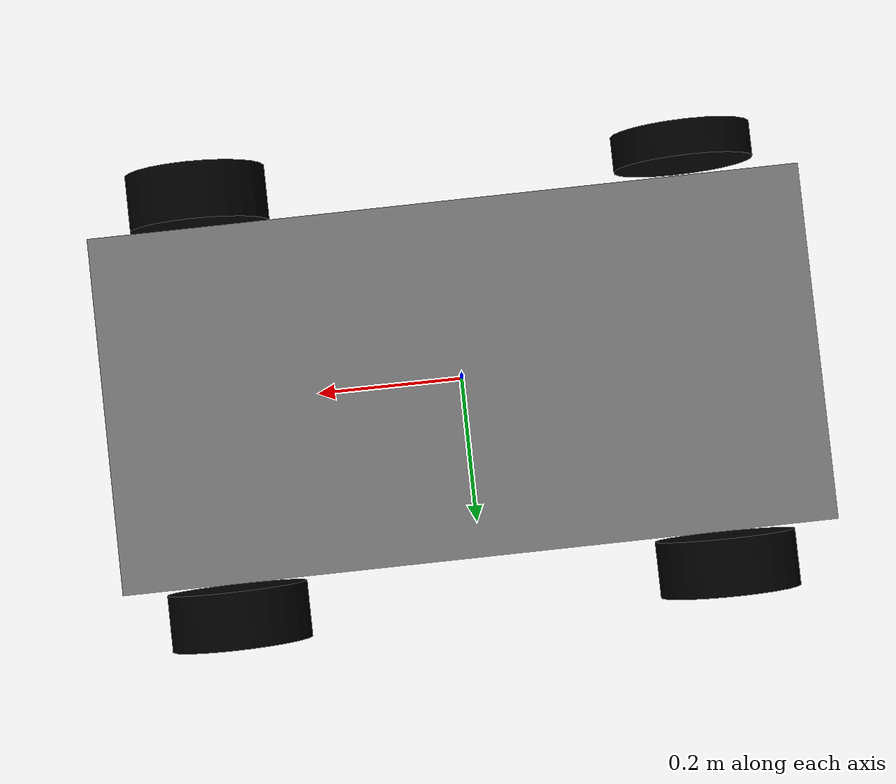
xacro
<?xml version='1.0'?>

<robot name="cart" xmlns:xacro="http://www.ros.org/wiki/xacro">

  <xacro:include filename="$(find cart_description)/urdf/inertial_macros.xacro" />

  <!-- STEP 5 - Gazebo plugin -->
  <xacro:include filename="$(find cart_description)/urdf/cart_control.gazebo" />

   <!-- STEP 4 - RViz colors -->
   <xacro:include filename="$(find cart_description)/urdf/material.xacro" />

  <!-- STEP 1 - Robot footprint -->
  <link name="base_footprint">

  </link>

  <!-- STEP 2 - Robot chassis = base_link -->
  <joint name="base_footprint_joint" type="fixed">
    <origin xyz="0 0 -0.075" rpy="0 0 0" />
    <parent link="base_footprint"/>
    <child link="base_link" />
  </joint>

  <link name='base_link'>
    <pose>0 0 0 0 0 0</pose>

    <inertial>
      <mass value="15.0"/>
      <origin xyz="0.0 0 0" rpy=" 0 0 0"/>
      <inertia
          ixx="0.0625" ixy="0" ixz="0"
          iyy="0.2125" iyz="0"
          izz="0.25"
      />
    </inertial>

    <collision name='collision'>
      <origin xyz="0 0 0" rpy=" 0 0 0"/>
      <geometry>
        <box size="1 .5 .15"/>
      </geometry>
    </collision>

    <visual name='base_link_visual'>
      <origin xyz="0 0 0" rpy=" 0 0 0"/>
      <geometry>
        <box size="1 .5 .15"/>
      </geometry>
      <material name="grey">
        <color rgba="0.5 0.5 0.5 1.0"/>
      </material>
    </visual>
  </link>

  <!-- Stand Panel -->

  <!-- STEP 3 - Wheels -->
  <joint type="continuous" name="front_left_wheel_joint">
    <origin xyz="0.35 0.3 0" rpy="0 0 0"/>
    <child link="front_left_wheel"/>
    <parent link="base_link"/>
    <axis xyz="0 1 0" rpy="0 0 0"/>
    <limit effort="100" velocity="10"/>
    <dynamics damping="1.0" friction="1.0"/>
  </joint>

  <link name='front_left_wheel'>
    <inertial>
      <mass value="5.0"/>
      <origin xyz="0 0 0" rpy="0 1.5707 1.5707"/>
      <inertia
          ixx="0.014" ixy="0" ixz="0"
          iyy="0.014" iyz="0"
          izz="0.025"
      />
    </inertial>

    <collision>
      <origin xyz="0 0 0" rpy="0 1.5707 1.5707"/>
      <geometry>
        <cylinder radius=".1" length=".08"/>
      </geometry>
    </collision>

    <visual name='front_left_wheel_visual'>
      <origin xyz="0 0 0" rpy="0 1.5707 1.5707"/>
      <geometry>
        <cylinder radius=".1" length=".08"/>
      </geometry>
      <material name="black">
         <color rgba="0.0 0.0 0.0 1.0"/>
      </material>
    </visual>
  </link>

  <joint type="continuous" name="rear_left_wheel_joint">
    <origin xyz="-0.35 0.3 0" rpy="0 0 0"/>
    <child link="rear_left_wheel"/>
    <parent link="base_link"/>
    <axis xyz="0 1 0" rpy="0 0 0"/>
    <limit effort="100" velocity="10"/>
    <dynamics damping="1.0" friction="1.0"/>
  </joint>

  <link name='rear_left_wheel'>
    <inertial>
      <mass value="5.0"/>
      <origin xyz="0 0 0" rpy="0 1.5707 1.5707"/>
      <inertia
          ixx="0.014" ixy="0" ixz="0"
          iyy="0.014" iyz="0"
          izz="0.025"
      />
    </inertial>
    <collision>
      <origin xyz="0 0 0" rpy="0 1.5707 1.5707"/>
      <geometry>
        <cylinder radius=".1" length=".08"/>
      </geometry>
    </collision>

    <visual name='rear_left_wheel_visual'>
      <origin xyz="0 0 0" rpy="0 1.5707 1.5707"/>
      <geometry>
        <cylinder radius=".1" length=".08"/>
      </geometry>
      <material name="black">
          <color rgba="0.0 0.0 0.0 1.0"/>
      </material>
    </visual>
  </link>

  <joint type="continuous" name="front_right_wheel_joint">
    <origin xyz="0.35 -0.3 0" rpy="0 0 0"/>
    <child link="front_right_wheel"/>
    <parent link="base_link"/>
    <axis xyz="0 1 0" rpy="0 0 0"/>
    <limit effort="100" velocity="10"/>
    <dynamics damping="1.0" friction="1.0"/>
  </joint>

  <link name='front_right_wheel'>
    <inertial>
      <mass value="5.0"/>
      <origin xyz="0 0 0" rpy="0 1.5707 1.5707"/>
      <inertia
          ixx="0.014" ixy="0" ixz="0"
          iyy="0.014" iyz="0"
          izz="0.025"
      />
    </inertial>

    <collision>
      <origin xyz="0 0 0" rpy="0 1.5707 1.5707"/>
      <geometry>
        <cylinder radius=".1" length=".08"/>
      </geometry>
    </collision>

    <visual name='front_right_wheel_visual'>
      <origin xyz="0 0 0" rpy="0 1.5707 1.5707"/>
      <geometry>
        <cylinder radius=".1" length=".08"/>
      </geometry>
      <material name="black">
          <color rgba="0.0 0.0 0.0 1.0"/>
      </material>
    </visual>
  </link>

  <joint type="continuous" name="rear_right_wheel_joint">
    <origin xyz="-0.35 -0.3 0" rpy="0 0 0"/>
    <child link="rear_right_wheel"/>
    <parent link="base_link"/>
    <axis xyz="0 1 0" rpy="0 0 0"/>
    <limit effort="100" velocity="10"/>
    <dynamics damping="1.0" friction="1.0"/>
  </joint>

  <link name='rear_right_wheel'>
    <inertial>
      <mass value="5.0"/>
      <origin xyz="0 0 0" rpy="0 1.5707 1.5707"/>
      <inertia
          ixx="0.014" ixy="0" ixz="0"
          iyy="0.014" iyz="0"
          izz="0.025"
      />
    </inertial>

    <collision>
      <origin xyz="0 0 0" rpy="0 1.5707 1.5707"/>
      <geometry>
        <cylinder radius=".1" length=".08"/>
      </geometry>
    </collision>

    <visual name='rear_right_wheel_visual'>
      <origin xyz="0 0 0" rpy="0 1.5707 1.5707"/>
      <geometry>
        <cylinder radius=".1" length=".05"/>
      </geometry>
      <material name="black">
          <color rgba="0.0 0.0 0.0 1.0"/>
      </material>
    </visual>
  </link>

  <!-- STEP 6 - Gazebo frictions and colors -->
  <gazebo reference="front_left_wheel">
    <mu1>1.5</mu1>
    <mu2>0.7</mu2>
    <kp>200000.0</kp>
    <kd>5000.0</kd>
    <minDepth>0.002</minDepth>
    <maxVel>0.3</maxVel>
    <fdir1>0 1 0</fdir1>
  </gazebo>

  <gazebo reference="front_right_wheel">
    <mu1>1.5</mu1>
    <mu2>0.7</mu2>
    <kp>200000.0</kp>
    <kd>5000.0</kd>
    <minDepth>0.002</minDepth>
    <maxVel>0.3</maxVel>
    <fdir1>0 1 0</fdir1>
  </gazebo>

  <gazebo reference="rear_left_wheel">
    <mu1>1.5</mu1>
    <mu2>0.7</mu2>
    <kp>200000.0</kp>
    <kd>5000.0</kd>
    <minDepth>0.002</minDepth>
    <maxVel>0.3</maxVel>
    <fdir1>0 1 0</fdir1>
  </gazebo>

  <gazebo reference="rear_right_wheel">
    <mu1>1.5</mu1>
    <mu2>0.7</mu2>
    <kp>200000.0</kp>
    <kd>5000.0</kd>
    <minDepth>0.002</minDepth>
    <maxVel>0.3</maxVel>
    <fdir1>0 1 0</fdir1>
  </gazebo>

  <gazebo reference="base_link">
    <mu1>0.000002</mu1>
    <mu2>0.000002</mu2>
  </gazebo>

</robot>

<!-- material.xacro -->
<robot>

  <material name="black">
    <color rgba="0.0 0.0 0.0 1.0"/>
  </material>

  <material name="white">
    <color rgba="1.0 1.0 1.0 1.0"/>
  </material>

  <material name="red">
    <color rgba="0.8 0.0 0.0 1.0"/>
  </material>

  <material name="blue">
    <color rgba="0.0 0.0 0.8 1.0"/>
  </material>

  <material name="green">
    <color rgba="0.0 0.8 0.0 1.0"/>
  </material>

  <material name="grey">
    <color rgba="0.5 0.5 0.5 1.0"/>
  </material>
</robot>
